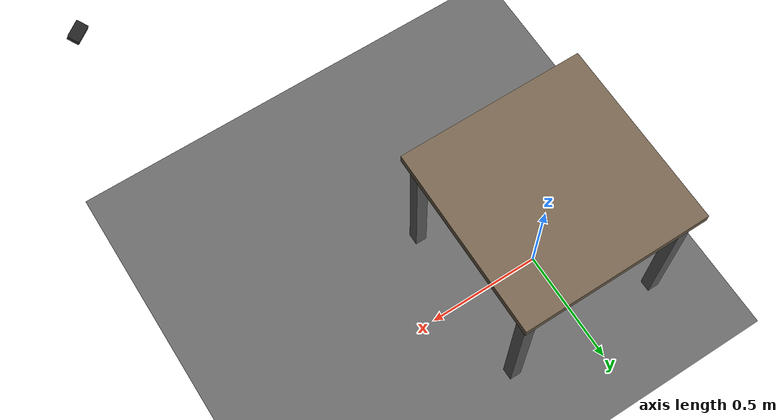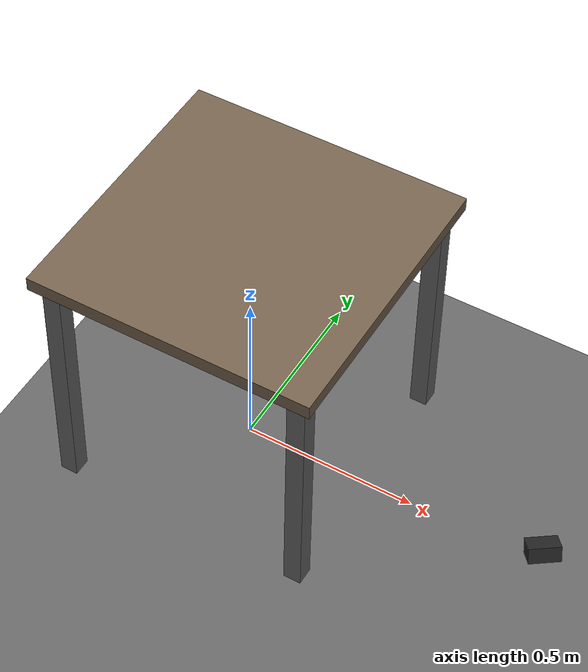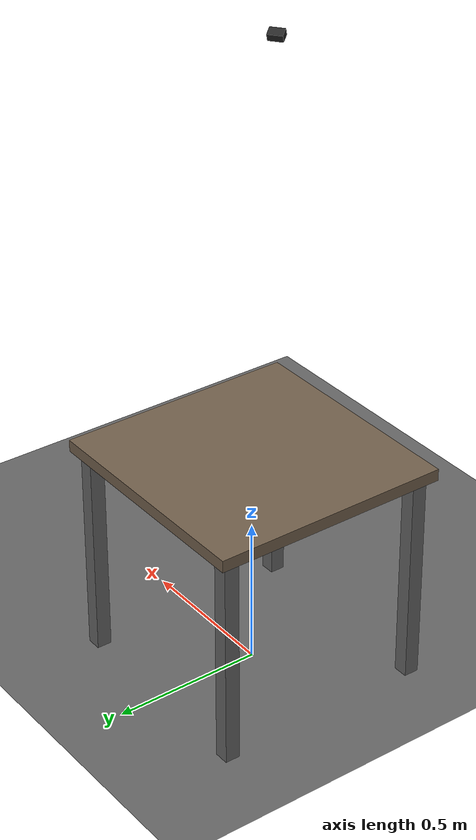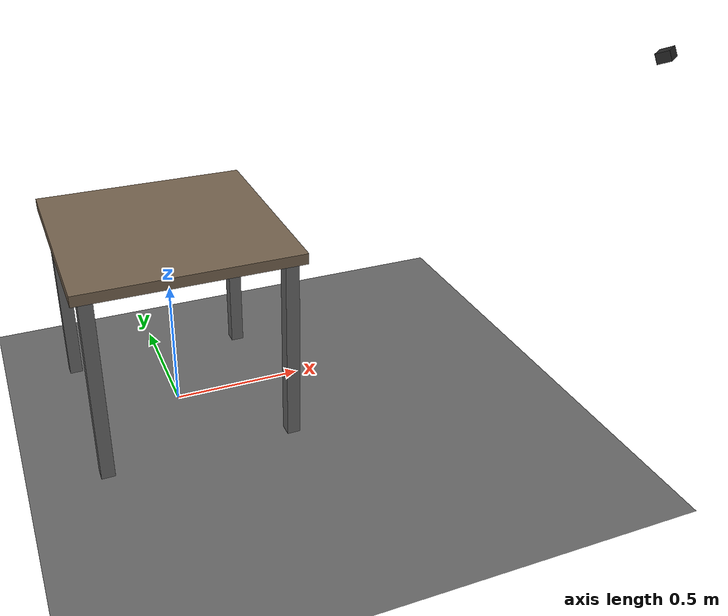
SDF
<sdf version="1.9">
 <world name="xarm6_world">
  <physics name="2ms" type="ignored">
   <max_step_size>0.002</max_step_size>
   <real_time_factor>1.0</real_time_factor>
   <real_time_update_rate>500</real_time_update_rate>
  </physics>
  <plugin filename="gz-sim-physics-system" name="gz::sim::systems::Physics"/>
  <plugin filename="gz-sim-scene-broadcaster-system" name="gz::sim::systems::SceneBroadcaster"/>
  <plugin filename="gz-sim-user-commands-system" name="gz::sim::systems::UserCommands"/>
  <plugin filename="gz-sim-sensors-system" name="gz::sim::systems::Sensors">
   <render_engine>ogre2</render_engine>
  </plugin>
  <plugin filename="gz-sim-contact-system" name="gz::sim::systems::Contact"/>
  <scene><ambient>0.6 0.6 0.6 1</ambient><background>0.2 0.2 0.25 1</background><shadows>true</shadows></scene>
  <light type="directional" name="sun">
   <pose>0 0 10 0 0 0</pose>
   <diffuse>0.9 0.9 0.9 1</diffuse>
   <specular>0.3 0.3 0.3 1</specular>
   <direction>-0.3 0.2 -1.0</direction>
  </light>
  <light type="directional" name="fill_light">
   <cast_shadows>false</cast_shadows>
   <pose>0 0 8 0 0 0</pose>
   <diffuse>0.4 0.4 0.4 1</diffuse>
   <specular>0.1 0.1 0.1 1</specular>
   <direction>0.3 -0.2 -0.8</direction>
  </light>
  <model name="ground_plane">
   <static>true</static>
   <link name="link">
    <collision name="collision">
     <geometry><plane><normal>0 0 1</normal><size>10 10</size></plane></geometry>
     <surface><contact><collide_bitmask>0x02</collide_bitmask></contact></surface>
    </collision>
    <visual name="visual">
     <geometry><plane><normal>0 0 1</normal><size>10 10</size></plane></geometry>
     <material><ambient>0.3 0.3 0.3 1</ambient><diffuse>0.4 0.4 0.4 1</diffuse></material>
    </visual>
   </link>
  </model>
  <model name="table">
   <static>true</static>
   <link name="body">
    <visual name="surface_visual">
     <pose>0 0 0.74 0 0 0</pose>
     <geometry><box><size>0.8 0.8 0.04</size></box></geometry>
     <material>
      <ambient>0.35 0.3 0.25 1</ambient>
      <diffuse>0.45 0.38 0.3 1</diffuse>
      <specular>0.2 0.2 0.2 1</specular>
     </material>
    </visual>
    <collision name="surface_collision">
     <pose>0 0 0.74 0 0 0</pose>
     <geometry><box><size>0.8 0.8 0.04</size></box></geometry>
     <surface><contact><collide_bitmask>0x02</collide_bitmask></contact></surface>
    </collision>
    <visual name="leg1_visual">
     <pose>0.35 0.35 0.36 0 0 0</pose>
     <geometry><box><size>0.05 0.05 0.72</size></box></geometry>
     <material><ambient>0.3 0.3 0.3 1</ambient><diffuse>0.4 0.4 0.4 1</diffuse></material>
    </visual>
    <collision name="leg1_collision">
     <pose>0.35 0.35 0.36 0 0 0</pose>
     <geometry><box><size>0.05 0.05 0.72</size></box></geometry>
     <surface><contact><collide_bitmask>0x02</collide_bitmask></contact></surface>
    </collision>
    <visual name="leg2_visual">
     <pose>-0.35 0.35 0.36 0 0 0</pose>
     <geometry><box><size>0.05 0.05 0.72</size></box></geometry>
     <material><ambient>0.3 0.3 0.3 1</ambient><diffuse>0.4 0.4 0.4 1</diffuse></material>
    </visual>
    <collision name="leg2_collision">
     <pose>-0.35 0.35 0.36 0 0 0</pose>
     <geometry><box><size>0.05 0.05 0.72</size></box></geometry>
     <surface><contact><collide_bitmask>0x02</collide_bitmask></contact></surface>
    </collision>
    <visual name="leg3_visual">
     <pose>0.35 -0.35 0.36 0 0 0</pose>
     <geometry><box><size>0.05 0.05 0.72</size></box></geometry>
     <material><ambient>0.3 0.3 0.3 1</ambient><diffuse>0.4 0.4 0.4 1</diffuse></material>
    </visual>
    <collision name="leg3_collision">
     <pose>0.35 -0.35 0.36 0 0 0</pose>
     <geometry><box><size>0.05 0.05 0.72</size></box></geometry>
     <surface><contact><collide_bitmask>0x02</collide_bitmask></contact></surface>
    </collision>
    <visual name="leg4_visual">
     <pose>-0.35 -0.35 0.36 0 0 0</pose>
     <geometry><box><size>0.05 0.05 0.72</size></box></geometry>
     <material><ambient>0.3 0.3 0.3 1</ambient><diffuse>0.4 0.4 0.4 1</diffuse></material>
    </visual>
    <collision name="leg4_collision">
     <pose>-0.35 -0.35 0.36 0 0 0</pose>
     <geometry><box><size>0.05 0.05 0.72</size></box></geometry>
     <surface><contact><collide_bitmask>0x02</collide_bitmask></contact></surface>
    </collision>
   </link>
  </model>
  <model name="overview_camera">
   <static>true</static>
   <pose>1.2 -1.0 1.5 0 0.4 2.2</pose>
   <link name="camera_body">
    <visual name="camera_housing">
     <geometry><box><size>0.04 0.06 0.03</size></box></geometry>
     <material><ambient>0.1 0.1 0.1 1</ambient><diffuse>0.15 0.15 0.15 1</diffuse></material>
    </visual>
    <sensor name="overview_cam" type="camera">
     <always_on>1</always_on>
     <update_rate>15</update_rate>
     <topic>overview_camera</topic>
     <camera>
      <horizontal_fov>1.22</horizontal_fov>
      <image><width>800</width><height>600</height><format>R8G8B8</format></image>
      <clip><near>0.1</near><far>10.0</far></clip>
     </camera>
    </sensor>
   </link>
  </model>
 </world>
</sdf>
